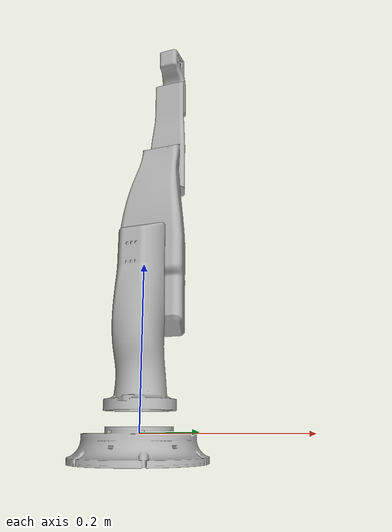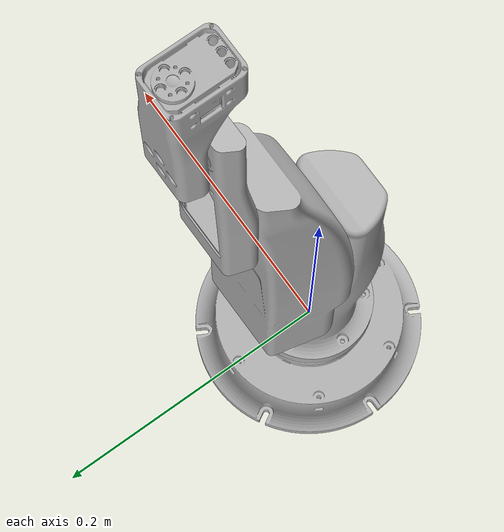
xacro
<?xml version="1.0"?>
<robot name="myrobot" xmlns:xacro="http://ros.org/wiki/xacro">
  <xacro:include filename="$(find myrobot_description)/urdf/myrobot.xacro" />
  <xacro:include filename="$(find myrobot_description)/urdf/myrobot.ros2_control.xacro" />

  <xacro:myrobot_ros2_control name="myrobot_ros2_control" />
</robot>

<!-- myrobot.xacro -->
<robot name="myrobot" xmlns:xacro="http://www.ros.org/wiki/xacro">

<xacro:include filename="$(find myrobot_description)/urdf/materials.xacro" />
<xacro:include filename="$(find myrobot_description)/urdf/myrobot.trans" />
<xacro:include filename="$(find myrobot_description)/urdf/myrobot.gazebo" />
<link name="base_link">
  <inertial>
    <origin xyz="-2.392851857687137e-05 -5.300803319461504e-09 0.00763304236283115" rpy="0 0 0"/>
    <mass value="2.933546779210685"/>
    <inertia ixx="0.004747" iyy="0.004749" izz="0.00893" ixy="0.0" iyz="-0.0" ixz="0.0"/>
  </inertial>
  <visual>
    <origin xyz="0 0 0" rpy="0 0 0"/>
    <geometry>
      <mesh filename="file://$(find myrobot_description)/meshes/base_link.stl" scale="0.001 0.001 0.001"/>
    </geometry>
    <material name="silver"/>
  </visual>
  <collision>
    <origin xyz="0 0 0" rpy="0 0 0"/>
    <geometry>
      <mesh filename="file://$(find myrobot_description)/meshes/base_link.stl" scale="0.001 0.001 0.001"/>
    </geometry>
  </collision>
</link>

<link name="link_1_1">
  <inertial>
    <origin xyz="-4.151294663686638e-07 -0.009279808040763556 0.10204796066778993" rpy="0 0 0"/>
    <mass value="0.9302052276738703"/>
    <inertia ixx="0.006061" iyy="0.006125" izz="0.000787" ixy="-0.0" iyz="0.00042" ixz="-0.0"/>
  </inertial>
  <visual>
    <origin xyz="-0.0 -0.0 -0.0312" rpy="0 0 0"/>
    <geometry>
      <mesh filename="file://$(find myrobot_description)/meshes/link_1_1.stl" scale="0.001 0.001 0.001"/>
    </geometry>
    <material name="silver"/>
  </visual>
  <collision>
    <origin xyz="-0.0 -0.0 -0.0312" rpy="0 0 0"/>
    <geometry>
      <mesh filename="file://$(find myrobot_description)/meshes/link_1_1.stl" scale="0.001 0.001 0.001"/>
    </geometry>
  </collision>
</link>

<link name="link_2_1">
  <inertial>
    <origin xyz="0.00036780303540046125 0.03076727172249008 0.012540618975346363" rpy="0 0 0"/>
    <mass value="1.6352826545494268"/>
    <inertia ixx="0.01147" iyy="0.011884" izz="0.001574" ixy="7e-06" iyz="-9.2e-05" ixz="-2.2e-05"/>
  </inertial>
  <visual>
    <origin xyz="-0.0 -0.002 -0.2182" rpy="0 0 0"/>
    <geometry>
      <mesh filename="file://$(find myrobot_description)/meshes/link_2_1.stl" scale="0.001 0.001 0.001"/>
    </geometry>
    <material name="silver"/>
  </visual>
  <collision>
    <origin xyz="-0.0 -0.002 -0.2182" rpy="0 0 0"/>
    <geometry>
      <mesh filename="file://$(find myrobot_description)/meshes/link_2_1.stl" scale="0.001 0.001 0.001"/>
    </geometry>
  </collision>
</link>

<link name="link_3_1">
  <inertial>
    <origin xyz="1.7277946714556383e-06 0.011962598890476739 0.04120294009153791" rpy="0 0 0"/>
    <mass value="0.43344163926540746"/>
    <inertia ixx="0.001762" iyy="0.001844" izz="0.000118" ixy="-0.0" iyz="-4.8e-05" ixz="-0.0"/>
  </inertial>
  <visual>
    <origin xyz="-0.0 -0.06063 -0.3682" rpy="0 0 0"/>
    <geometry>
      <mesh filename="file://$(find myrobot_description)/meshes/link_3_1.stl" scale="0.001 0.001 0.001"/>
    </geometry>
    <material name="silver"/>
  </visual>
  <collision>
    <origin xyz="-0.0 -0.06063 -0.3682" rpy="0 0 0"/>
    <geometry>
      <mesh filename="file://$(find myrobot_description)/meshes/link_3_1.stl" scale="0.001 0.001 0.001"/>
    </geometry>
  </collision>
</link>

<link name="link_4_1">
  <inertial>
    <origin xyz="-4.592120418693256e-08 0.003013178400541147 0.046242828124350266" rpy="0 0 0"/>
    <mass value="0.30089103090381814"/>
    <inertia ixx="0.000298" iyy="0.000291" izz="6.2e-05" ixy="0.0" iyz="3.3e-05" ixz="-0.0"/>
  </inertial>
  <visual>
    <origin xyz="0.0 -0.08208 -0.4882" rpy="0 0 0"/>
    <geometry>
      <mesh filename="file://$(find myrobot_description)/meshes/link_4_1.stl" scale="0.001 0.001 0.001"/>
    </geometry>
    <material name="silver"/>
  </visual>
  <collision>
    <origin xyz="0.0 -0.08208 -0.4882" rpy="0 0 0"/>
    <geometry>
      <mesh filename="file://$(find myrobot_description)/meshes/link_4_1.stl" scale="0.001 0.001 0.001"/>
    </geometry>
  </collision>
</link>

<joint name="m1" type="revolute">
  <origin xyz="0.0 0.0 0.0312" rpy="0 0 0"/>
  <parent link="base_link"/>
  <child link="link_1_1"/>
  <axis xyz="0.0 0.0 1.0"/>
  <limit upper="2.792527" lower="-2.792527" effort="100" velocity="100"/>
</joint>

<joint name="m2" type="revolute">
  <origin xyz="0.0 0.002 0.187" rpy="0 0 0"/>
  <parent link="link_1_1"/>
  <child link="link_2_1"/>
  <axis xyz="0.0 1.0 0.0"/>
  <limit upper="2.792527" lower="-2.792527" effort="100" velocity="100"/>
</joint>

<joint name="m3" type="revolute">
  <origin xyz="0.0 0.05863 0.15" rpy="0 0 0"/>
  <parent link="link_2_1"/>
  <child link="link_3_1"/>
  <axis xyz="0.0 1.0 -0.0"/>
  <limit upper="2.792527" lower="-2.792527" effort="100" velocity="100"/>
</joint>

<joint name="m4" type="revolute">
  <origin xyz="-0.0 0.02145 0.12" rpy="0 0 0"/>
  <parent link="link_3_1"/>
  <child link="link_4_1"/>
  <axis xyz="0.0 1.0 -0.0"/>
  <limit upper="2.792527" lower="-2.792527" effort="100" velocity="100"/>
</joint>

</robot>

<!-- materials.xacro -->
<robot name="myrobot" xmlns:xacro="http://www.ros.org/wiki/xacro" >

<material name="silver">
  <color rgba="0.700 0.700 0.700 1.000"/>
</material>

</robot>

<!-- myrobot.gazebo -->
<robot name="myrobot" xmlns:xacro="http://www.ros.org/wiki/xacro" >

<xacro:property name="body_color" value="Gazebo/Silver" />

<gazebo>
  <plugin name="control" filename="libgazebo_ros_control.so"/>
</gazebo>
<gazebo reference="base_link">
  <material>${body_color}</material>
  <mu1>0.2</mu1>
  <mu2>0.2</mu2>
  <self_collide>true</self_collide>
  <gravity>true</gravity>
</gazebo>

<gazebo reference="link2_1">
  <material>${body_color}</material>
  <mu1>0.2</mu1>
  <mu2>0.2</mu2>
  <self_collide>true</self_collide>
</gazebo>

<gazebo reference="link3_1">
  <material>${body_color}</material>
  <mu1>0.2</mu1>
  <mu2>0.2</mu2>
  <self_collide>true</self_collide>
</gazebo>

<gazebo reference="link4_1">
  <material>${body_color}</material>
  <mu1>0.2</mu1>
  <mu2>0.2</mu2>
  <self_collide>true</self_collide>
</gazebo>

<gazebo reference="link5_1">
  <material>${body_color}</material>
  <mu1>0.2</mu1>
  <mu2>0.2</mu2>
  <self_collide>true</self_collide>
</gazebo>

<gazebo reference="wrist_1">
  <material>${body_color}</material>
  <mu1>0.2</mu1>
  <mu2>0.2</mu2>
  <self_collide>true</self_collide>
</gazebo>

</robot>
